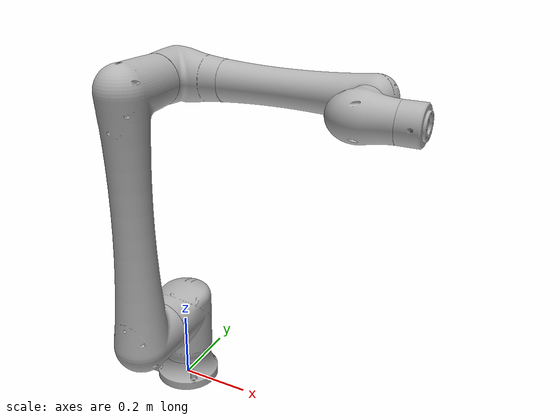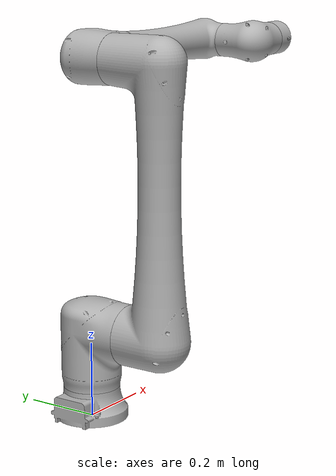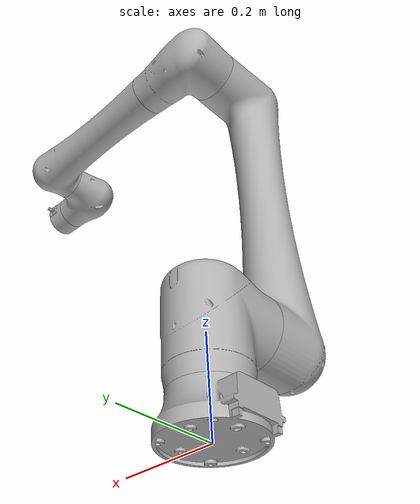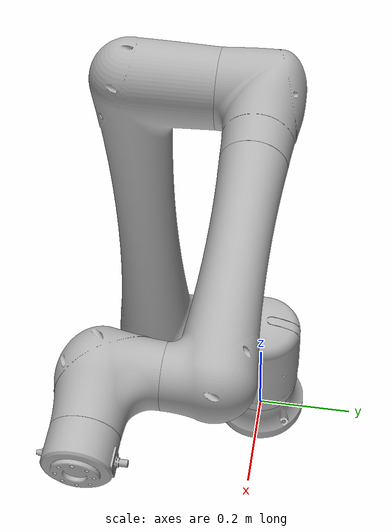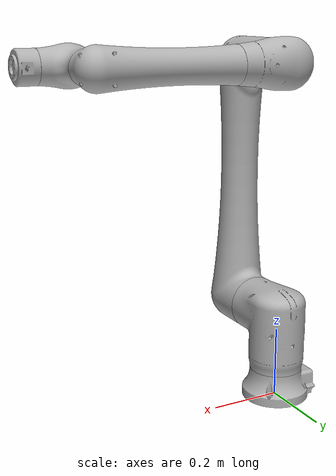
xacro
<?xml version="1.0" ?>
<robot name="crx_10ial" xmlns:xacro="http://www.ros.org/wiki/xacro">

<xacro:include filename="$(find crx_10ial_description)/urdf/materials.xacro" />
<xacro:include filename="$(find crx_10ial_description)/urdf/crx_10ial.trans" />
<xacro:include filename="$(find crx_10ial_description)/urdf/crx_10ial.gazebo" />
<link name="base_link">
  <inertial>
    <origin xyz="-0.005401407267602474 -3.950778979169285e-07 0.04086772241915714" rpy="0 0 0"/>
    <mass value="14.941707471688588"/>
    <inertia ixx="0.034902" iyy="0.04052" izz="0.059728" ixy="-9e-06" iyz="-0.0" ixz="0.000382"/>
  </inertial>
  <visual>
    <origin xyz="0 0 0" rpy="0 0 0"/>
    <geometry>
      <mesh filename="file://$(find crx_10ial_description)/meshes/base_link.stl" scale="0.001 0.001 0.001"/>
    </geometry>
    <material name="silver"/>
  </visual>
  <collision>
    <origin xyz="0 0 0" rpy="0 0 0"/>
    <geometry>
      <mesh filename="file://$(find crx_10ial_description)/meshes/base_link.stl" scale="0.001 0.001 0.001"/>
    </geometry>
  </collision>
</link>

<link name="link_1_1">
  <inertial>
    <origin xyz="1.8332190603503724e-07 -0.01768231754730603 0.12390683224533154" rpy="0 0 0"/>
    <mass value="43.2252090859283"/>
    <inertia ixx="0.28763" iyy="0.245503" izz="0.180243" ixy="-0.0" iyz="0.027946" ixz="1e-06"/>
  </inertial>
  <visual>
    <origin xyz="-0.0 0.0 -0.085" rpy="0 0 0"/>
    <geometry>
      <mesh filename="file://$(find crx_10ial_description)/meshes/link_1_1.stl" scale="0.001 0.001 0.001"/>
    </geometry>
    <material name="silver"/>
  </visual>
  <collision>
    <origin xyz="-0.0 0.0 -0.085" rpy="0 0 0"/>
    <geometry>
      <mesh filename="file://$(find crx_10ial_description)/meshes/link_1_1.stl" scale="0.001 0.001 0.001"/>
    </geometry>
  </collision>
</link>

<link name="link_2_1">
  <inertial>
    <origin xyz="1.1364156727892186e-07 -0.0831641038308821 0.3401786976597365" rpy="0 0 0"/>
    <mass value="95.15164249026033"/>
    <inertia ixx="7.528339" iyy="7.437832" izz="0.298491" ixy="0.0" iyz="-0.198857" ixz="2e-06"/>
  </inertial>
  <visual>
    <origin xyz="-0.0 0.119 -0.244" rpy="0 0 0"/>
    <geometry>
      <mesh filename="file://$(find crx_10ial_description)/meshes/link_2_1.stl" scale="0.001 0.001 0.001"/>
    </geometry>
    <material name="silver"/>
  </visual>
  <collision>
    <origin xyz="-0.0 0.119 -0.244" rpy="0 0 0"/>
    <geometry>
      <mesh filename="file://$(find crx_10ial_description)/meshes/link_2_1.stl" scale="0.001 0.001 0.001"/>
    </geometry>
  </collision>
</link>

<link name="link_3_1">
  <inertial>
    <origin xyz="0.035204209319988 0.06853222331786327 1.7569395693861622e-07" rpy="0 0 0"/>
    <mass value="22.32712168492412"/>
    <inertia ixx="0.050729" iyy="0.098632" izz="0.100913" ixy="-0.005919" iyz="-0.0" ixz="-0.0"/>
  </inertial>
  <visual>
    <origin xyz="-2.3e-05 0.075 -0.954161" rpy="0 0 0"/>
    <geometry>
      <mesh filename="file://$(find crx_10ial_description)/meshes/link_3_1.stl" scale="0.001 0.001 0.001"/>
    </geometry>
    <material name="silver"/>
  </visual>
  <collision>
    <origin xyz="-2.3e-05 0.075 -0.954161" rpy="0 0 0"/>
    <geometry>
      <mesh filename="file://$(find crx_10ial_description)/meshes/link_3_1.stl" scale="0.001 0.001 0.001"/>
    </geometry>
  </collision>
</link>

<link name="link_4_1">
  <inertial>
    <origin xyz="0.228344940392029 -0.0016927987516335075 1.6243301925733533e-07" rpy="0 0 0"/>
    <mass value="26.825303996152876"/>
    <inertia ixx="0.035351" iyy="0.46427" izz="0.466364" ixy="0.007333" iyz="-0.0" ixz="0.0"/>
  </inertial>
  <visual>
    <origin xyz="-0.153023 0.0 -0.954161" rpy="0 0 0"/>
    <geometry>
      <mesh filename="file://$(find crx_10ial_description)/meshes/link_4_1.stl" scale="0.001 0.001 0.001"/>
    </geometry>
    <material name="silver"/>
  </visual>
  <collision>
    <origin xyz="-0.153023 0.0 -0.954161" rpy="0 0 0"/>
    <geometry>
      <mesh filename="file://$(find crx_10ial_description)/meshes/link_4_1.stl" scale="0.001 0.001 0.001"/>
    </geometry>
  </collision>
</link>

<link name="link_5_1">
  <inertial>
    <origin xyz="0.02021845776584552 -0.07303769933784057 4.064488573485292e-07" rpy="0 0 0"/>
    <mass value="11.641560755130822"/>
    <inertia ixx="0.021516" iyy="0.025088" izz="0.031492" ixy="0.003018" iyz="-0.0" ixz="0.0"/>
  </inertial>
  <visual>
    <origin xyz="-0.539023 0.064 -0.954161" rpy="0 0 0"/>
    <geometry>
      <mesh filename="file://$(find crx_10ial_description)/meshes/link_5_1.stl" scale="0.001 0.001 0.001"/>
    </geometry>
    <material name="silver"/>
  </visual>
  <collision>
    <origin xyz="-0.539023 0.064 -0.954161" rpy="0 0 0"/>
    <geometry>
      <mesh filename="file://$(find crx_10ial_description)/meshes/link_5_1.stl" scale="0.001 0.001 0.001"/>
    </geometry>
  </collision>
</link>

<link name="link_6_1">
  <inertial>
    <origin xyz="0.02756658249853161 0.0004749335113841402 4.5986851138213325e-06" rpy="0 0 0"/>
    <mass value="2.893909047647129"/>
    <inertia ixx="0.003054" iyy="0.002221" izz="0.002302" ixy="-8e-06" iyz="0.0" ixz="-0.0"/>
  </inertial>
  <visual>
    <origin xyz="-0.638523 0.149 -0.954161" rpy="0 0 0"/>
    <geometry>
      <mesh filename="file://$(find crx_10ial_description)/meshes/link_6_1.stl" scale="0.001 0.001 0.001"/>
    </geometry>
    <material name="silver"/>
  </visual>
  <collision>
    <origin xyz="-0.638523 0.149 -0.954161" rpy="0 0 0"/>
    <geometry>
      <mesh filename="file://$(find crx_10ial_description)/meshes/link_6_1.stl" scale="0.001 0.001 0.001"/>
    </geometry>
  </collision>
</link>

<joint name="Revolute 1" type="continuous">
  <origin xyz="0.0 0.0 0.085" rpy="0 0 0"/>
  <parent link="base_link"/>
  <child link="link_1_1"/>
  <axis xyz="0.0 0.0 1.0"/>
</joint>

<joint name="Revolute 2" type="continuous">
  <origin xyz="0.0 -0.119 0.159" rpy="0 0 0"/>
  <parent link="link_1_1"/>
  <child link="link_2_1"/>
  <axis xyz="0.0 -1.0 0.0"/>
</joint>

<joint name="Revolute 3" type="continuous">
  <origin xyz="2.3e-05 0.044 0.710161" rpy="0 0 0"/>
  <parent link="link_2_1"/>
  <child link="link_3_1"/>
  <axis xyz="0.0 1.0 0.0"/>
</joint>

<joint name="Revolute 4" type="continuous">
  <origin xyz="0.153 0.075 0.0" rpy="0 0 0"/>
  <parent link="link_3_1"/>
  <child link="link_4_1"/>
  <axis xyz="1.0 0.0 0.0"/>
</joint>

<joint name="Revolute 5" type="continuous">
  <origin xyz="0.386 -0.064 0.0" rpy="0 0 0"/>
  <parent link="link_4_1"/>
  <child link="link_5_1"/>
  <axis xyz="0.0 -1.0 0.0"/>
</joint>

<joint name="Revolute 6" type="continuous">
  <origin xyz="0.0995 -0.085 0.0" rpy="0 0 0"/>
  <parent link="link_5_1"/>
  <child link="link_6_1"/>
  <axis xyz="1.0 0.0 0.0"/>
</joint>

</robot>

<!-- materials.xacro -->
<robot name="crx_10ial" xmlns:xacro="http://www.ros.org/wiki/xacro" >

<material name="silver">
  <color rgba="0.700 0.700 0.700 1.000"/>
</material>

</robot>

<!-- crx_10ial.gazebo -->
<robot name="crx_10ial" xmlns:xacro="http://www.ros.org/wiki/xacro" >

<xacro:property name="body_color" value="Gazebo/Silver" />

<gazebo>
  <plugin name="control" filename="libgazebo_ros_control.so"/>
</gazebo>
<gazebo reference="base_link">
  <material>${body_color}</material>
  <mu1>0.2</mu1>
  <mu2>0.2</mu2>
  <self_collide>true</self_collide>
  <gravity>true</gravity>
</gazebo>

<gazebo reference="link_1_1">
  <material>${body_color}</material>
  <mu1>0.2</mu1>
  <mu2>0.2</mu2>
  <self_collide>true</self_collide>
</gazebo>

<gazebo reference="link_2_1">
  <material>${body_color}</material>
  <mu1>0.2</mu1>
  <mu2>0.2</mu2>
  <self_collide>true</self_collide>
</gazebo>

<gazebo reference="link_3_1">
  <material>${body_color}</material>
  <mu1>0.2</mu1>
  <mu2>0.2</mu2>
  <self_collide>true</self_collide>
</gazebo>

<gazebo reference="link_4_1">
  <material>${body_color}</material>
  <mu1>0.2</mu1>
  <mu2>0.2</mu2>
  <self_collide>true</self_collide>
</gazebo>

<gazebo reference="link_5_1">
  <material>${body_color}</material>
  <mu1>0.2</mu1>
  <mu2>0.2</mu2>
  <self_collide>true</self_collide>
</gazebo>

<gazebo reference="link_6_1">
  <material>${body_color}</material>
  <mu1>0.2</mu1>
  <mu2>0.2</mu2>
  <self_collide>true</self_collide>
</gazebo>

</robot>
